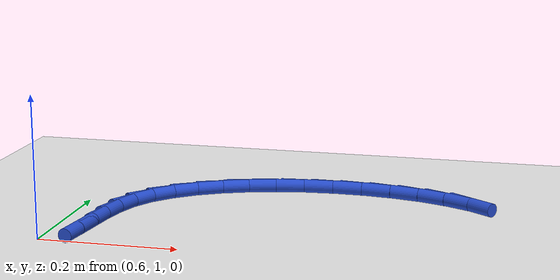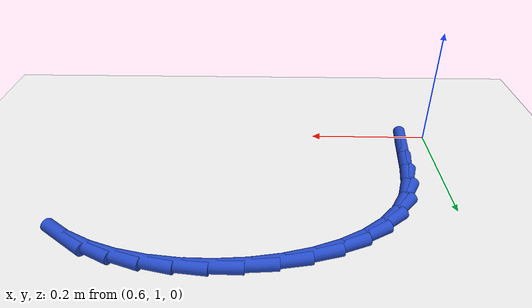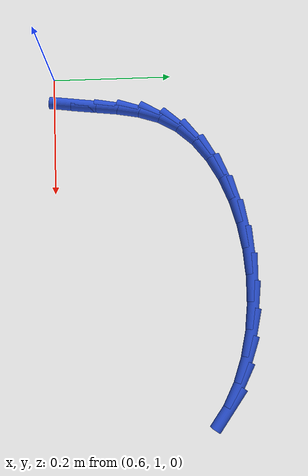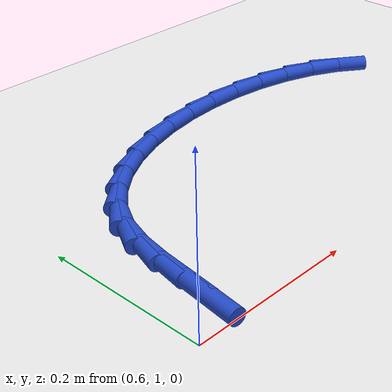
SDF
<sdf version="1.6">
 <world name="default">
  <model name="ground_plane">
   <static>1</static>
   <link name="link">
    <collision name="collision">
     <geometry><plane><normal>0 0 1</normal><size>100 100</size></plane></geometry>
     <surface><friction><ode><mu>100</mu><mu2>50</mu2></ode></friction></surface>
    </collision>
    <visual name="visual">
     <cast_shadows>0</cast_shadows>
     <geometry><plane><normal>0 0 1</normal><size>100 100</size></plane></geometry>
     <material>
      <script><uri>file://media/materials/scripts/gazebo.material</uri><name>Gazebo/WhiteGlow</name></script>
     </material>
    </visual>
   </link>
  </model>
  <model name="line">
   <link name="link_36">
    <pose>0.647715618034429 1.0330392520933838 0.01 0 1.57 1.44986373121103</pose>
    <collision name="collision">
     <geometry><cylinder><radius>0.01</radius><length>0.08</length></cylinder></geometry>
    </collision>
    <visual name="visual">
     <material>
      <script><name>Gazebo/Blue</name><uri>file://media/materials/scripts/gazebo.material</uri></script>
     </material>
     <geometry><cylinder><radius>0.01</radius><length>0.08</length></cylinder></geometry>
    </visual>
   </link>
   <link name="link_37">
    <pose>0.6522109656071282 1.0700302039235514 0.01 0 1.57 1.456564288502031</pose>
    <collision name="collision">
     <geometry><cylinder><radius>0.01</radius><length>0.08</length></cylinder></geometry>
    </collision>
    <visual name="visual">
     <material>
      <script><name>Gazebo/Blue</name><uri>file://media/materials/scripts/gazebo.material</uri></script>
     </material>
     <geometry><cylinder><radius>0.01</radius><length>0.08</length></cylinder></geometry>
    </visual>
   </link>
   <link name="link_38">
    <pose>0.6565440248854156 1.1077971528709811 0.01 0 1.57 1.3957773819081913</pose>
    <collision name="collision">
     <geometry><cylinder><radius>0.01</radius><length>0.08</length></cylinder></geometry>
    </collision>
    <visual name="visual">
     <material>
      <script><name>Gazebo/Blue</name><uri>file://media/materials/scripts/gazebo.material</uri></script>
     </material>
     <geometry><cylinder><radius>0.01</radius><length>0.08</length></cylinder></geometry>
    </visual>
   </link>
   <link name="link_39">
    <pose>0.6631052956971728 1.144902504317443 0.01 0 1.57 1.2616632803875663</pose>
    <collision name="collision">
     <geometry><cylinder><radius>0.01</radius><length>0.08</length></cylinder></geometry>
    </collision>
    <visual name="visual">
     <material>
      <script><name>Gazebo/Blue</name><uri>file://media/materials/scripts/gazebo.material</uri></script>
     </material>
     <geometry><cylinder><radius>0.01</radius><length>0.08</length></cylinder></geometry>
    </visual>
   </link>
   <link name="link_40">
    <pose>0.6742852778702814 1.179908663644708 0.01 0 1.57 1.0561876570562012</pose>
    <collision name="collision">
     <geometry><cylinder><radius>0.01</radius><length>0.08</length></cylinder></geometry>
    </collision>
    <visual name="visual">
     <material>
      <script><name>Gazebo/Blue</name><uri>file://media/materials/scripts/gazebo.material</uri></script>
     </material>
     <geometry><cylinder><radius>0.01</radius><length>0.08</length></cylinder></geometry>
    </visual>
   </link>
   <link name="link_41">
    <pose>0.6921539661439563 1.2115108869189446 0.01 0 1.57 0.8478943375363157</pose>
    <collision name="collision">
     <geometry><cylinder><radius>0.01</radius><length>0.08</length></cylinder></geometry>
    </collision>
    <visual name="visual">
     <material>
      <script><name>Gazebo/Blue</name><uri>file://media/materials/scripts/gazebo.material</uri></script>
     </material>
     <geometry><cylinder><radius>0.01</radius><length>0.08</length></cylinder></geometry>
    </visual>
   </link>
   <link name="link_42">
    <pose>0.7166567812597245 1.23928507491253 0.01 0 1.57 0.6687808550829932</pose>
    <collision name="collision">
     <geometry><cylinder><radius>0.01</radius><length>0.08</length></cylinder></geometry>
    </collision>
    <visual name="visual">
     <material>
      <script><name>Gazebo/Blue</name><uri>file://media/materials/scripts/gazebo.material</uri></script>
     </material>
     <geometry><cylinder><radius>0.01</radius><length>0.08</length></cylinder></geometry>
    </visual>
   </link>
   <link name="link_43">
    <pose>0.7468747018690478 1.2631654432182597 0.01 0 1.57 0.5173192038806435</pose>
    <collision name="collision">
     <geometry><cylinder><radius>0.01</radius><length>0.08</length></cylinder></geometry>
    </collision>
    <visual name="visual">
     <material>
      <script><name>Gazebo/Blue</name><uri>file://media/materials/scripts/gazebo.material</uri></script>
     </material>
     <geometry><cylinder><radius>0.01</radius><length>0.08</length></cylinder></geometry>
    </visual>
   </link>
   <link name="link_44">
    <pose>0.781886193053816 1.2830872493139078 0.01 0 1.57 0.3881337335708626</pose>
    <collision name="collision">
     <geometry><cylinder><radius>0.01</radius><length>0.08</length></cylinder></geometry>
    </collision>
    <visual name="visual">
     <material>
      <script><name>Gazebo/Blue</name><uri>file://media/materials/scripts/gazebo.material</uri></script>
     </material>
     <geometry><cylinder><radius>0.01</radius><length>0.08</length></cylinder></geometry>
    </visual>
   </link>
   <link name="link_45">
    <pose>0.8207697198959191 1.2989857506772475 0.01 0 1.57 0.27515589376207744</pose>
    <collision name="collision">
     <geometry><cylinder><radius>0.01</radius><length>0.08</length></cylinder></geometry>
    </collision>
    <visual name="visual">
     <material>
      <script><name>Gazebo/Blue</name><uri>file://media/materials/scripts/gazebo.material</uri></script>
     </material>
     <geometry><cylinder><radius>0.01</radius><length>0.08</length></cylinder></geometry>
    </visual>
   </link>
   <link name="link_46">
    <pose>0.8626037474772476 1.3107962047860542 0.01 0 1.57 0.17283951026834776</pose>
    <collision name="collision">
     <geometry><cylinder><radius>0.01</radius><length>0.08</length></cylinder></geometry>
    </collision>
    <visual name="visual">
     <material>
      <script><name>Gazebo/Blue</name><uri>file://media/materials/scripts/gazebo.material</uri></script>
     </material>
     <geometry><cylinder><radius>0.01</radius><length>0.08</length></cylinder></geometry>
    </visual>
   </link>
   <link name="link_47">
    <pose>0.9064667408796909 1.3184538691181007 0.01 0 1.57 0.0763489587434544</pose>
    <collision name="collision">
     <geometry><cylinder><radius>0.01</radius><length>0.08</length></cylinder></geometry>
    </collision>
    <visual name="visual">
     <material>
      <script><name>Gazebo/Blue</name><uri>file://media/materials/scripts/gazebo.material</uri></script>
     </material>
     <geometry><cylinder><radius>0.01</radius><length>0.08</length></cylinder></geometry>
    </visual>
   </link>
   <link name="link_48">
    <pose>0.9514371651851397 1.3218940011511615 0.01 0 1.57 -0.01864733817116636</pose>
    <collision name="collision">
     <geometry><cylinder><radius>0.01</radius><length>0.08</length></cylinder></geometry>
    </collision>
    <visual name="visual">
     <material>
      <script><name>Gazebo/Blue</name><uri>file://media/materials/scripts/gazebo.material</uri></script>
     </material>
     <geometry><cylinder><radius>0.01</radius><length>0.08</length></cylinder></geometry>
    </visual>
   </link>
   <link name="link_49">
    <pose>0.9965934854754843 1.3210518583630115 0.01 0 1.57 -0.11629148016576486</pose>
    <collision name="collision">
     <geometry><cylinder><radius>0.01</radius><length>0.08</length></cylinder></geometry>
    </collision>
    <visual name="visual">
     <material>
      <script><name>Gazebo/Blue</name><uri>file://media/materials/scripts/gazebo.material</uri></script>
     </material>
     <geometry><cylinder><radius>0.01</radius><length>0.08</length></cylinder></geometry>
    </visual>
   </link>
   <link name="link_50">
    <pose>1.0410141668326138 1.3158626982314237 0.01 0 1.57 -0.22084989505280353</pose>
    <collision name="collision">
     <geometry><cylinder><radius>0.01</radius><length>0.08</length></cylinder></geometry>
    </collision>
    <visual name="visual">
     <material>
      <script><name>Gazebo/Blue</name><uri>file://media/materials/scripts/gazebo.material</uri></script>
     </material>
     <geometry><cylinder><radius>0.01</radius><length>0.08</length></cylinder></geometry>
    </visual>
   </link>
   <link name="link_51">
    <pose>1.0837776743384195 1.3062617782341728 0.01 0 1.57 -0.3369572909305993</pose>
    <collision name="collision">
     <geometry><cylinder><radius>0.01</radius><length>0.08</length></cylinder></geometry>
    </collision>
    <visual name="visual">
     <material>
      <script><name>Gazebo/Blue</name><uri>file://media/materials/scripts/gazebo.material</uri></script>
     </material>
     <geometry><cylinder><radius>0.01</radius><length>0.08</length></cylinder></geometry>
    </visual>
   </link>
   <link name="link_52">
    <pose>1.1239624730747908 1.2921843558490325 0.01 0 1.57 -0.4696568083055794</pose>
    <collision name="collision">
     <geometry><cylinder><radius>0.01</radius><length>0.08</length></cylinder></geometry>
    </collision>
    <visual name="visual">
     <material>
      <script><name>Gazebo/Blue</name><uri>file://media/materials/scripts/gazebo.material</uri></script>
     </material>
     <geometry><cylinder><radius>0.01</radius><length>0.08</length></cylinder></geometry>
    </visual>
   </link>
   <link name="link_53">
    <pose>1.1606470281236183 1.2735656885537767 0.01 0 1.57 -0.6239302826332535</pose>
    <collision name="collision">
     <geometry><cylinder><radius>0.01</radius><length>0.08</length></cylinder></geometry>
    </collision>
    <visual name="visual">
     <material>
      <script><name>Gazebo/Blue</name><uri>file://media/materials/scripts/gazebo.material</uri></script>
     </material>
     <geometry><cylinder><radius>0.01</radius><length>0.08</length></cylinder></geometry>
    </visual>
   </link>
  </model>
 </world>
</sdf>
